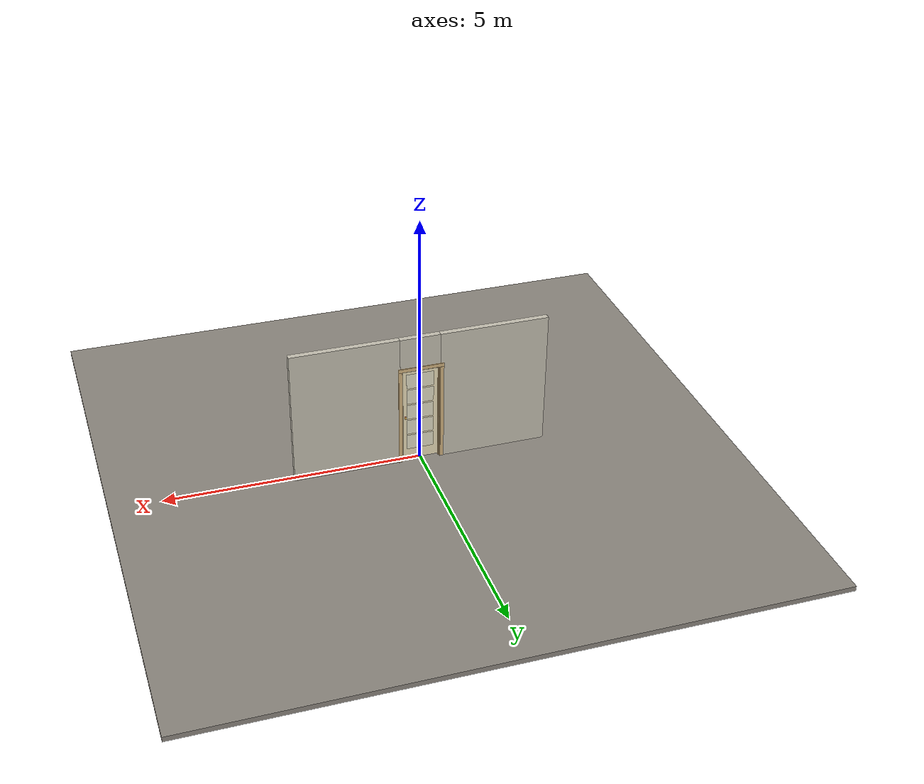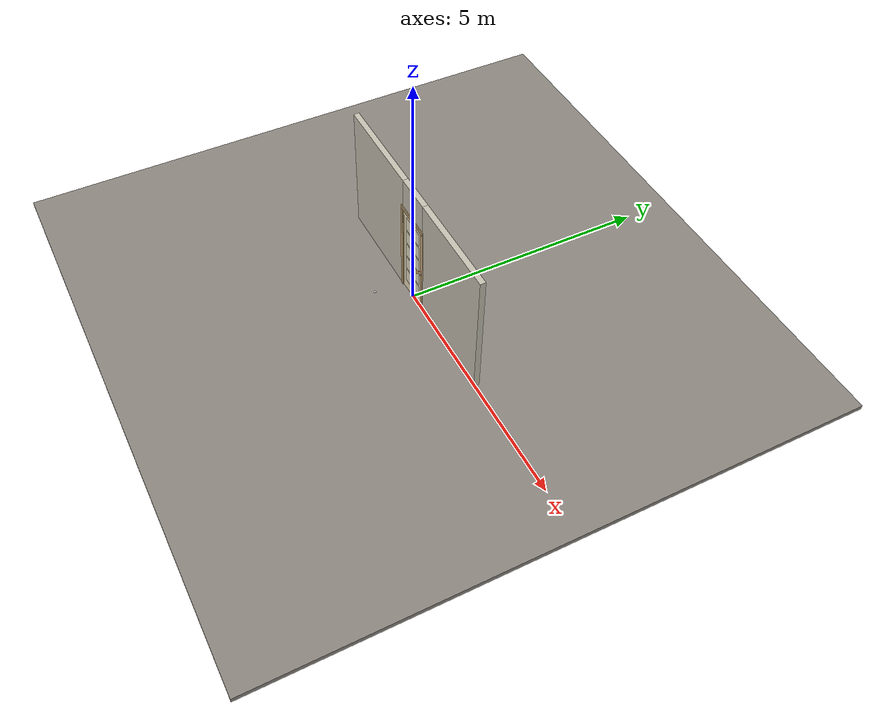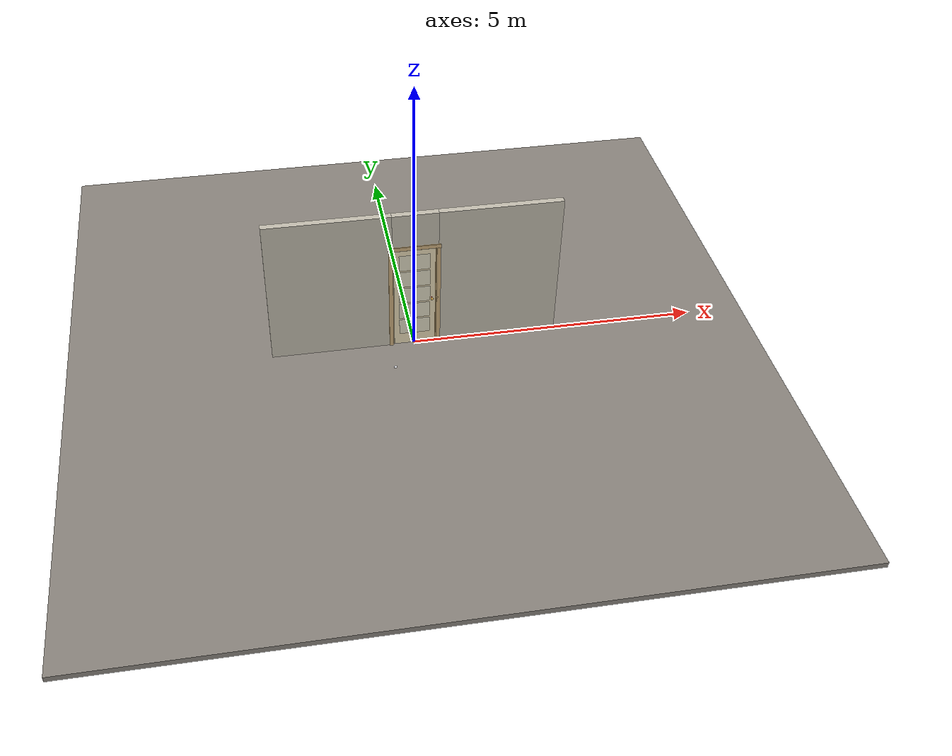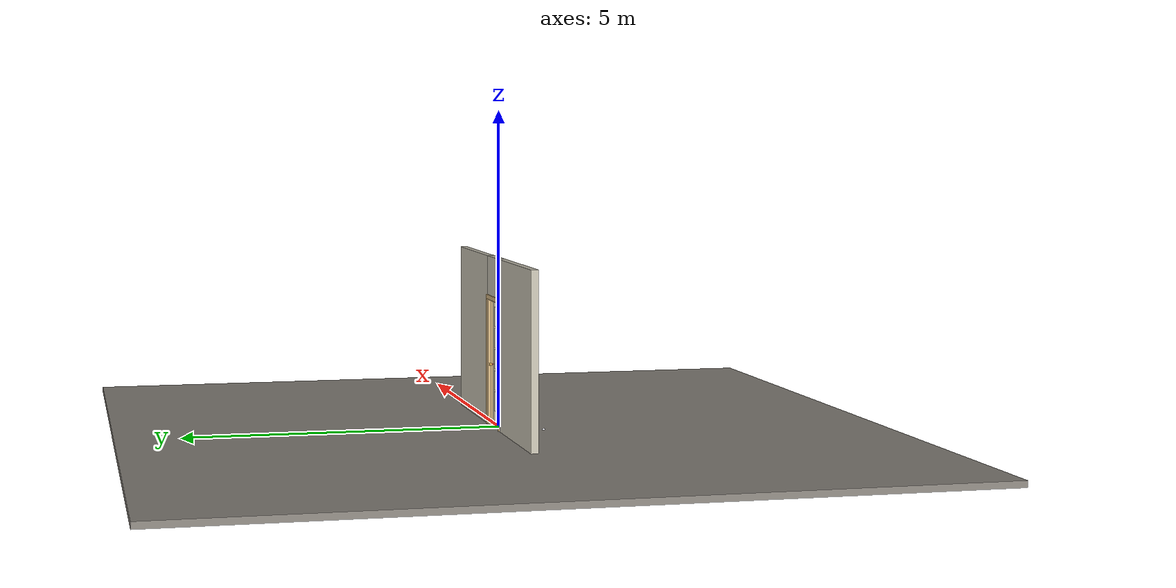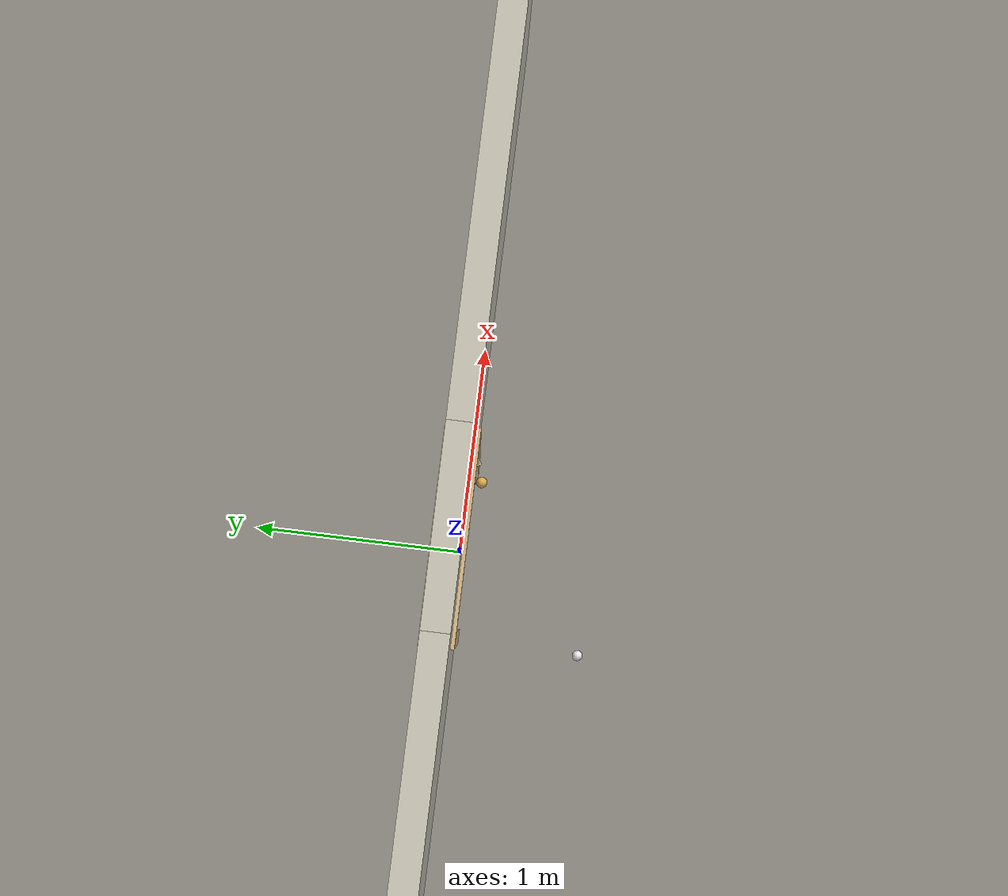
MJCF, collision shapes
<?xml version="1.0" ?>
<mujoco model="db0472_swing_single_full">
  <compiler angle="radian" meshdir="../../hardware" texturedir="../../textures" autolimits="true" inertiafromgeom="false"/>
  <option timestep="0.002" integrator="implicitfast" cone="elliptic" impratio="10" noslip_iterations="3">
    <flag multiccd="enable"/>
  </option>
  <size memory="16M"/>
  <default>
    <geom condim="4" solref="0.005 1" solimp="0.95 0.99 0.001"/>
    <joint solreflimit="0.005 1" solimplimit="0.95 0.99 0.001"/>
    <tendon solreflimit="0.005 1"/>
    <equality solref="0.002 1"/>
  </default>
  <visual>
    <headlight ambient="0.4 0.4 0.4" diffuse="0.7 0.7 0.7" specular="0.2 0.2 0.2"/>
    <quality shadowsize="4096"/>
    <map znear="0.01" zfar="60"/>
  </visual>
  <asset>
    <mesh name="hinge_96510cf394" file="hinge_96510cf394.obj"/>
    <mesh name="hinge_jamb_7fd4ca52b2" file="hinge_jamb_7fd4ca52b2.obj"/>
    <mesh name="knob_d1888f6f03" file="knob_d1888f6f03.obj"/>
    <material name="mat_floor" rgba="0.55 0.53 0.5 1" specular="0.2" shininess="0.15" reflectance="0"/>
    <material name="mat_wall" rgba="0.78 0.76 0.7 1" specular="0.2" shininess="0.1" reflectance="0"/>
    <material name="mat_leaf" rgba="0.93 0.88 0.74 1" specular="0.2" shininess="0.32" reflectance="0"/>
    <material name="mat_glass" rgba="0.85 0.92 0.95 0.25" specular="0.2" shininess="0.95" reflectance="0.1"/>
    <material name="mat_hinge" rgba="0.65 0.66 0.68 1" specular="0.74" shininess="0.5" reflectance="0.36"/>
    <material name="mat_op_brass" rgba="0.85 0.66 0.3 1" specular="0.8" shininess="0.75" reflectance="0.4"/>
    <material name="mat_trim" rgba="0.85 0.66 0.3 1" specular="0.8" shininess="0.75" reflectance="0.4"/>
    <material name="mat_bolt" rgba="0.85 0.66 0.3 1" specular="0.8" shininess="0.75" reflectance="0.4"/>
    <material name="mat_frame" rgba="0.82 0.7 0.5 1" specular="0.2" shininess="0.45" reflectance="0"/>
    <material name="mat_stop" rgba="0.9 0.9 0.92 1" specular="0.8" shininess="0.9" reflectance="0.4"/>
    <texture name="skybox" type="skybox" builtin="gradient" rgb1="0.6 0.7 0.85" rgb2="0.9 0.92 0.95" width="256" height="256"/>
  </asset>
  <worldbody>
    <light name="sun" pos="1.5 -2.5 4" dir="-0.3 0.5 -0.8" directional="true" diffuse="0.8 0.8 0.8" specular="0.3 0.3 0.3" castshadow="true"/>
    <light name="fill" pos="-1.5 2.5 3" dir="0.3 -0.5 -0.7" directional="true" diffuse="0.35 0.35 0.4" castshadow="false"/>
    <camera name="robot_view" pos="0 -2.465125 1.698475" xyaxes="1 0 0 0 0.26963 0.962964" fovy="52"/>
    <camera name="far_view" pos="0 2.531125 1.698475" xyaxes="-1 0 0 0 -0.26963 0.962964" fovy="52"/>
    <camera name="iso" pos="1.898575 -2.065425 2.098175" xyaxes="0.741536 0.670913 0 -0.242917 0.268487 0.932151" fovy="46"/>
    <camera name="detail_handle" pos="0.475 -0.864 1.245" xyaxes="0.97561 0.219512 0 -0.070934 0.315262 0.94635" fovy="38"/>
    <geom name="floor" type="box" size="6 6 0.05" pos="0 0 -0.05" material="mat_floor" group="0" contype="1" conaffinity="1" friction="0.8 0.005 0.0001" density="2400"/>
    <geom name="wall_left" type="box" size="1.061 0.0575 1.35" pos="-1.439 0.033 1.35" material="mat_wall" group="0" contype="1" conaffinity="1" friction="0.6 0.005 0.0001" density="800"/>
    <geom name="wall_right" type="box" size="1.046 0.0575 1.35" pos="1.454 0.033 1.35" material="mat_wall" group="0" contype="1" conaffinity="1" friction="0.6 0.005 0.0001" density="800"/>
    <geom name="wall_header" type="box" size="0.393 0.0575 0.3265" pos="0.015 0.033 2.3735" material="mat_wall" group="0" contype="1" conaffinity="1" friction="0.6 0.005 0.0001" density="800"/>
    <geom name="hinge_0_jamb" type="mesh" mesh="hinge_jamb_7fd4ca52b2" pos="-0.356 -0.0245 0.259" material="mat_hinge" group="1" contype="0" conaffinity="0" density="7850"/>
    <geom name="hinge_1_jamb" type="mesh" mesh="hinge_jamb_7fd4ca52b2" pos="-0.356 -0.0245 1.814" material="mat_hinge" group="1" contype="0" conaffinity="0" density="7850"/>
    <geom name="jamb_hinge" type="box" size="0.0095 0.0575 0.999" pos="-0.3685 0.033 0.999" material="mat_frame" group="0" contype="1" conaffinity="1" friction="0.6 0.005 0.0001" density="400"/>
    <geom name="strike_965_wall_n" type="box" size="0.0245 0.041325 0.0167" pos="0.3835 0.049175 0.965" material="mat_frame" group="0" contype="1" conaffinity="1" friction="0.6 0.005 0.0001" density="400"/>
    <geom name="strike_965_wall_p" type="box" size="0.0245 0.008 0.0167" pos="0.3835 -0.01585 0.965" material="mat_frame" group="0" contype="1" conaffinity="1" friction="0.6 0.005 0.0001" density="400"/>
    <geom name="strike_965_ramp" type="box" size="0.0245 0.01649 0.0167" pos="0.388136 -0.028673 0.965" quat="0.977148 0 0 0.212558" material="mat_frame" group="0" contype="1" conaffinity="1" friction="0.12 0.005 0.0001" density="400"/>
    <geom name="strike_965_back" type="box" size="0.01615 0.00785 0.0167" pos="0.39185 0 0.965" material="mat_frame" group="0" contype="1" conaffinity="1" friction="0.6 0.005 0.0001" density="400"/>
    <geom name="jamb_strike_0" type="box" size="0.0245 0.0575 0.47415" pos="0.3835 0.033 0.47415" material="mat_frame" group="0" contype="1" conaffinity="1" friction="0.6 0.005 0.0001" density="400"/>
    <geom name="jamb_strike_1" type="box" size="0.0245 0.0575 0.50815" pos="0.3835 0.033 1.48985" material="mat_frame" group="0" contype="1" conaffinity="1" friction="0.6 0.005 0.0001" density="400"/>
    <geom name="jamb_head" type="box" size="0.393 0.0575 0.0095" pos="0.015 0.033 2.0075" material="mat_frame" group="0" contype="1" conaffinity="1" friction="0.6 0.005 0.0001" density="400"/>
    <geom name="head_stud" type="box" size="0.393 0.0575 0.015" pos="0.015 0.033 2.032" material="mat_wall" group="0" contype="1" conaffinity="1" friction="0.6 0.005 0.0001" density="500"/>
    <geom name="stop_hinge" type="box" size="0.0055 0.016 0.999" pos="-0.3535 0.034 0.999" material="mat_frame" group="0" contype="1" conaffinity="1" friction="0.6 0.005 0.0001" density="400"/>
    <geom name="stop_strike" type="box" size="0.0055 0.016 0.999" pos="0.3535 0.034 0.999" material="mat_frame" group="0" contype="1" conaffinity="1" friction="0.6 0.005 0.0001" density="400"/>
    <geom name="stop_head" type="box" size="0.359 0.016 0.0055" pos="0 0.034 1.9925" material="mat_frame" group="0" contype="1" conaffinity="1" friction="0.6 0.005 0.0001" density="400"/>
    <geom name="casing_l_n" type="box" size="0.035 0.008 1.0085" pos="-0.408 -0.0325 0.999" material="mat_frame" group="2" contype="0" conaffinity="0" density="400"/>
    <geom name="casing_r_n" type="box" size="0.035 0.008 1.0085" pos="0.408 -0.0325 0.999" material="mat_frame" group="2" contype="0" conaffinity="0" density="400"/>
    <geom name="casing_h_n" type="box" size="0.443 0.008 0.035" pos="0 -0.0325 2.047" material="mat_frame" group="2" contype="0" conaffinity="0" density="400"/>
    <geom name="casing_l_p" type="box" size="0.035 0.008 1.0085" pos="-0.408 0.0985 0.999" material="mat_frame" group="2" contype="0" conaffinity="0" density="400"/>
    <geom name="casing_r_p" type="box" size="0.035 0.008 1.0085" pos="0.408 0.0985 0.999" material="mat_frame" group="2" contype="0" conaffinity="0" density="400"/>
    <geom name="casing_h_p" type="box" size="0.443 0.008 0.035" pos="0 0.0985 2.047" material="mat_frame" group="2" contype="0" conaffinity="0" density="400"/>
    <geom name="floor_stop_dome" type="sphere" size="0.025" pos="-0.428596 -0.624807 0" material="mat_stop" group="0" contype="1" conaffinity="1" friction="0.6 0.005 0.0001" density="7000"/>
    <site name="approach_point" pos="0 -1.5 0" quat="1 0 0 0" size="0.05" rgba="0.2 0.9 0.2 0.5" group="4"/>
    <site name="goal_point" pos="0 1.5 0" quat="1 0 0 0" size="0.05" rgba="0.2 0.9 0.2 0.5" group="4"/>
    <site name="door_plane_center" pos="0 0 0.999" quat="1 0 0 0" size="0.02" rgba="0.2 0.9 0.2 0.5" group="4"/>
    <body name="leaf" pos="-0.359 0 0">
      <inertial pos="0.339577 -0.000819 1.0037" mass="16.22437" quat="-0.499117 0.502045 -0.497913 -0.500915" diaginertia="0.758454681 5.558419183 6.31313598"/>
      <joint name="leaf_hinge" type="hinge" axis="0 0 -1" pos="0.003 -0.0245 0" limited="true" range="0 1.658063" damping="2.091613" frictionloss="0.160886" stiffness="4.4" springref="-0.409091" armature="0.02"/>
      <geom name="leaf_slab" type="box" size="0.3555 0.0175 0.9925" pos="0.3585 0 1.0015" material="mat_leaf" group="0" contype="1" conaffinity="1" friction="0.35 0.005 0.0001" density="1"/>
      <geom name="leaf_glass_0" type="box" size="0.12525 0.0183 0.15474" pos="0.21825 0 0.38209" material="mat_glass" group="1" contype="0" conaffinity="0" density="1"/>
      <geom name="leaf_glass_1" type="box" size="0.12525 0.0183 0.15474" pos="0.49875 0 0.38209" material="mat_glass" group="1" contype="0" conaffinity="0" density="1"/>
      <geom name="leaf_glass_2" type="box" size="0.12525 0.0183 0.15474" pos="0.21825 0 0.72157" material="mat_glass" group="1" contype="0" conaffinity="0" density="1"/>
      <geom name="leaf_glass_3" type="box" size="0.12525 0.0183 0.15474" pos="0.49875 0 0.72157" material="mat_glass" group="1" contype="0" conaffinity="0" density="1"/>
      <geom name="leaf_glass_4" type="box" size="0.12525 0.0183 0.15474" pos="0.21825 0 1.06105" material="mat_glass" group="1" contype="0" conaffinity="0" density="1"/>
      <geom name="leaf_glass_5" type="box" size="0.12525 0.0183 0.15474" pos="0.49875 0 1.06105" material="mat_glass" group="1" contype="0" conaffinity="0" density="1"/>
      <geom name="leaf_glass_6" type="box" size="0.12525 0.0183 0.15474" pos="0.21825 0 1.40053" material="mat_glass" group="1" contype="0" conaffinity="0" density="1"/>
      <geom name="leaf_glass_7" type="box" size="0.12525 0.0183 0.15474" pos="0.49875 0 1.40053" material="mat_glass" group="1" contype="0" conaffinity="0" density="1"/>
      <geom name="leaf_glass_8" type="box" size="0.12525 0.0183 0.15474" pos="0.21825 0 1.74001" material="mat_glass" group="1" contype="0" conaffinity="0" density="1"/>
      <geom name="leaf_glass_9" type="box" size="0.12525 0.0183 0.15474" pos="0.49875 0 1.74001" material="mat_glass" group="1" contype="0" conaffinity="0" density="1"/>
      <geom name="hinge_0" type="mesh" mesh="hinge_96510cf394" pos="0.003 -0.0245 0.259" material="mat_hinge" group="1" contype="0" conaffinity="0" density="7850"/>
      <geom name="hinge_1" type="mesh" mesh="hinge_96510cf394" pos="0.003 -0.0245 1.814" material="mat_hinge" group="1" contype="0" conaffinity="0" density="7850"/>
      <geom name="leaf_latch_bolt_faceplate" type="box" size="0.0006 0.01235 0.0267" pos="0.7134 0 0.965" material="mat_bolt" group="1" contype="0" conaffinity="0" density="8500"/>
      <site name="leaf_edge_mid" pos="0.714 0 0.9925" quat="1 0 0 0" size="0.02" rgba="0.2 0.9 0.2 0.5" group="4"/>
      <body name="leaf_handle" pos="0.654 0 0.965">
        <inertial pos="0 0 0" mass="1.143961" quat="-0.5 0.5 -0.5 0.5" diaginertia="0.00031237 0.003706292 0.003706292"/>
        <joint name="leaf_handle_hinge" type="hinge" axis="0 -1 0" limited="true" range="0 0.87" damping="0.143613" frictionloss="0.038" stiffness="0.5" springref="-0.5" armature="0.01"/>
        <geom name="leaf_handle_spindle" type="cylinder" size="0.006 0.0255" pos="0 0 0" quat="0.707107 -0.707107 0 0" material="mat_op_brass" group="1" contype="0" conaffinity="0" density="7850"/>
        <geom name="leaf_handle_knob_n" type="mesh" mesh="knob_d1888f6f03" pos="0 -0.0175 0" quat="0.707107 0.707107 0 0" material="mat_op_brass" group="1" contype="0" conaffinity="0" density="3000"/>
        <geom name="leaf_handle_knob_col_n" type="sphere" size="0.0243" pos="0 -0.064 0" material="mat_op_brass" group="0" contype="1" conaffinity="1" friction="0.9 0.01 0.0001" density="3000"/>
        <geom name="leaf_handle_knob_neck_n" type="cylinder" size="0.011 0.012" pos="0 -0.0295 0" quat="0.707107 -0.707107 0 0" material="mat_op_brass" group="3" contype="1" conaffinity="1" rgba="0.8 0.3 0.3 0.25" friction="0.6 0.005 0.0001" density="3000"/>
        <geom name="leaf_handle_knob_p" type="mesh" mesh="knob_d1888f6f03" pos="0 0.0175 0" quat="-0.707107 0.707107 0 0" material="mat_op_brass" group="1" contype="0" conaffinity="0" density="3000"/>
        <geom name="leaf_handle_knob_col_p" type="sphere" size="0.0243" pos="0 0.064 0" material="mat_op_brass" group="0" contype="1" conaffinity="1" friction="0.9 0.01 0.0001" density="3000"/>
        <geom name="leaf_handle_knob_neck_p" type="cylinder" size="0.011 0.012" pos="0 0.0295 0" quat="0.707107 -0.707107 0 0" material="mat_op_brass" group="3" contype="1" conaffinity="1" rgba="0.8 0.3 0.3 0.25" friction="0.6 0.005 0.0001" density="3000"/>
        <site name="leaf_handle_grip_n" pos="0 -0.064 0" quat="1 0 0 0" size="0.012" rgba="0.2 0.9 0.2 0.5" group="4"/>
        <site name="leaf_handle_grip_p" pos="0 0.064 0" quat="1 0 0 0" size="0.012" rgba="0.2 0.9 0.2 0.5" group="4"/>
      </body>
      <body name="leaf_latch_bolt" pos="0.714 0 0.965">
        <inertial pos="-0.00865 0 0" mass="0.041419" quat="0.92388 -0.382683 0 0" diaginertia="0.000000798 0.000005598 0.000005598"/>
        <joint name="leaf_latch_bolt_slide" type="slide" axis="-1 0 0" limited="true" range="0 0.0127" damping="2" frictionloss="0.3" stiffness="300" springref="-0.008333" armature="0.1"/>
        <geom name="leaf_latch_bolt_capsule" type="capsule" size="0.00635 0.015" pos="-0.00865 0 0" quat="0.707107 0 0.707107 0" material="mat_bolt" group="0" contype="1" conaffinity="1" friction="0.2 0.005 0.0001" density="8500"/>
      </body>
    </body>
  </worldbody>
  <tendon>
    <fixed name="leaf_latch_bolt_coupling" limited="true" range="0 10">
      <joint joint="leaf_latch_bolt_slide" coef="1"/>
      <joint joint="leaf_handle_hinge" coef="-0.015679"/>
    </fixed>
  </tendon>
  <sensor>
    <jointpos name="leaf_hinge_pos" joint="leaf_hinge"/>
    <jointvel name="leaf_hinge_vel" joint="leaf_hinge"/>
    <jointpos name="leaf_handle_hinge_pos" joint="leaf_handle_hinge"/>
    <jointvel name="leaf_handle_hinge_vel" joint="leaf_handle_hinge"/>
    <jointpos name="leaf_latch_bolt_slide_pos" joint="leaf_latch_bolt_slide"/>
    <jointvel name="leaf_latch_bolt_slide_vel" joint="leaf_latch_bolt_slide"/>
  </sensor>
</mujoco>
